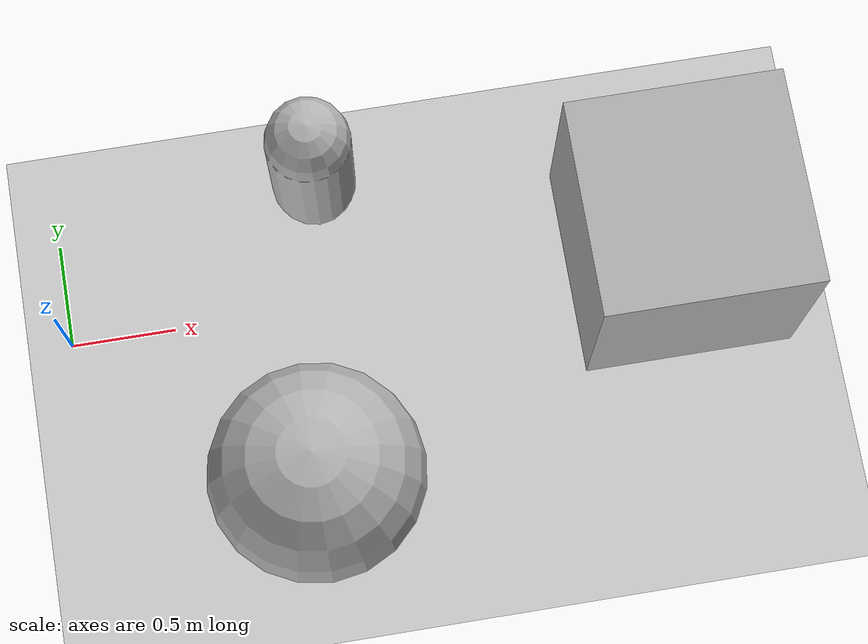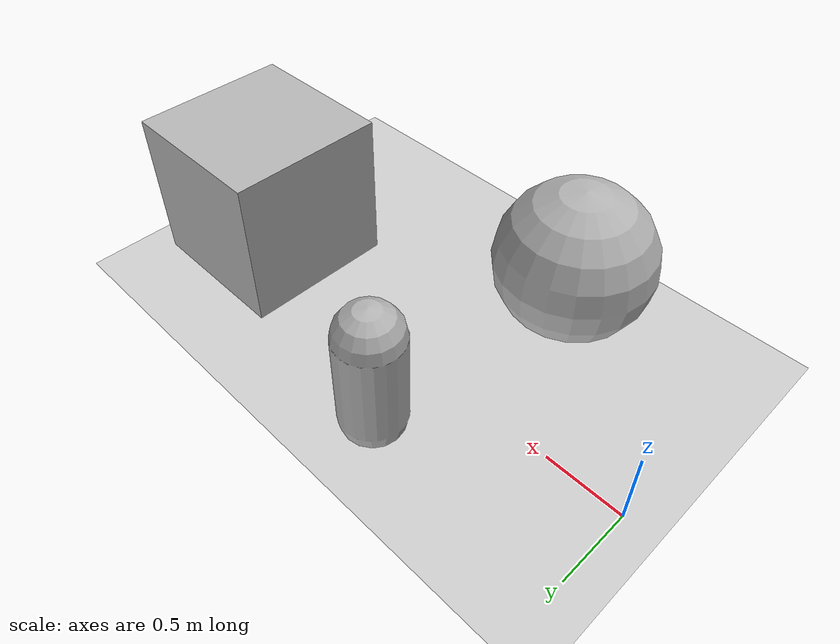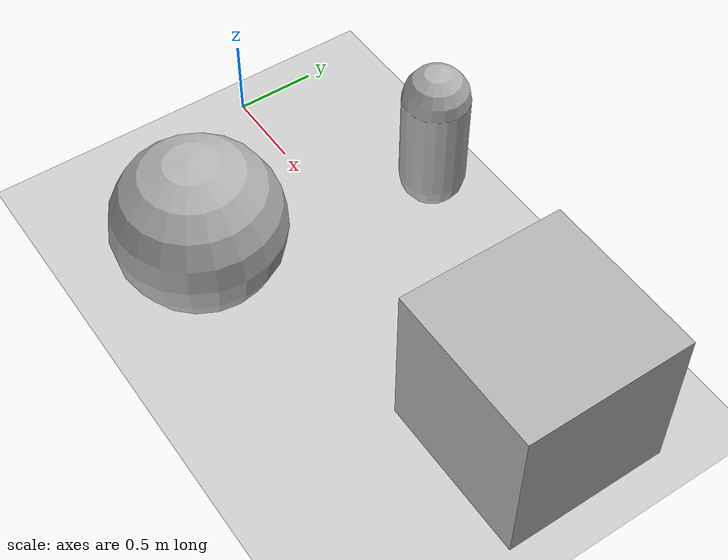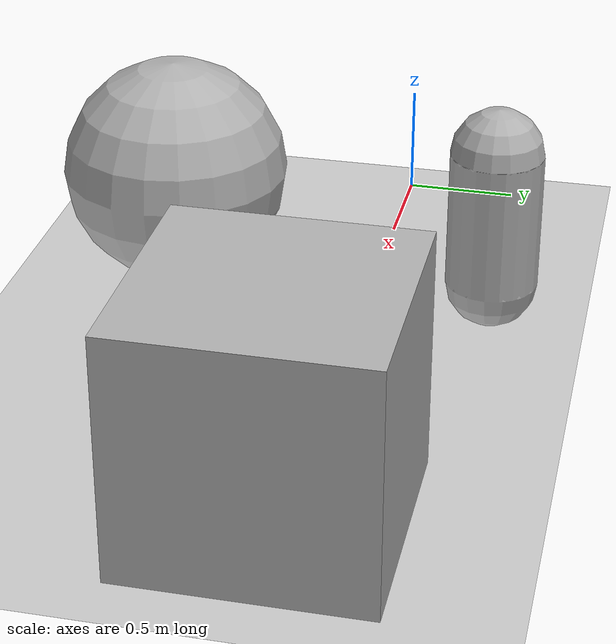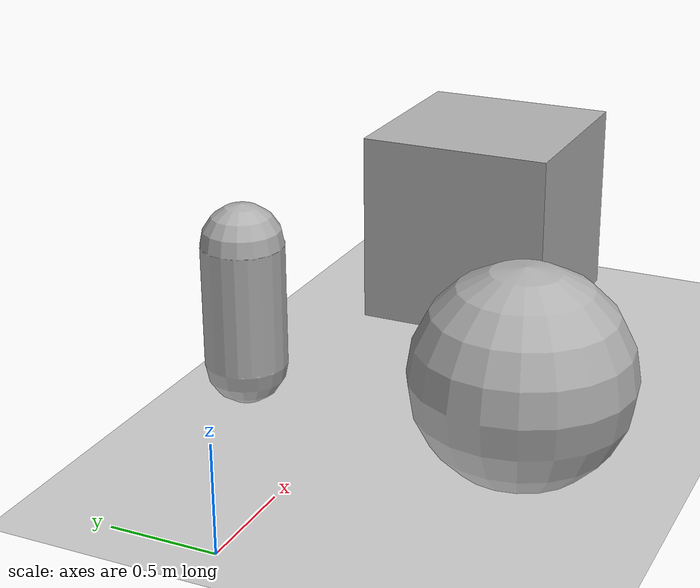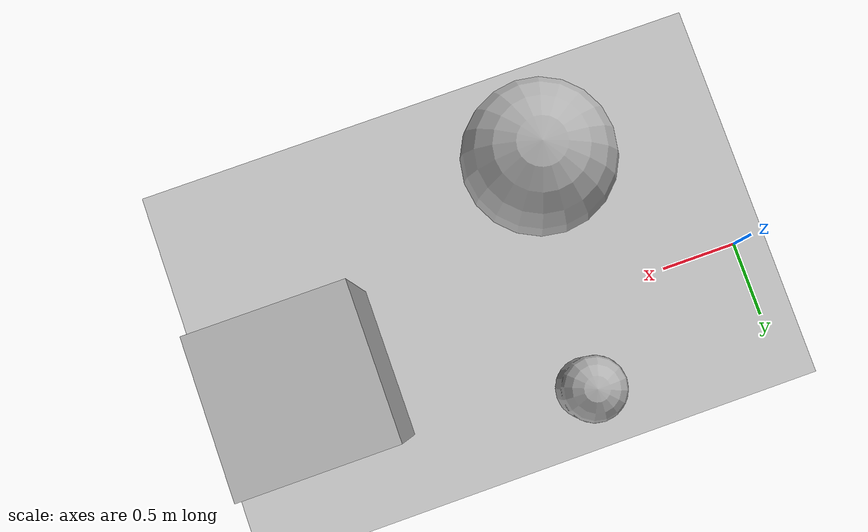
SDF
<sdf version='1.10'>
  <world name='empty'>
    <physics name='1ms' type='ignored'>
      <max_step_size>0.001</max_step_size>
      <real_time_factor>1</real_time_factor>
      <real_time_update_rate>1000</real_time_update_rate>
    </physics>
    <plugin name='gz::sim::systems::Physics' filename='gz-sim-physics-system'/>
    <plugin name='gz::sim::systems::UserCommands' filename='gz-sim-user-commands-system'/>
    <plugin name='gz::sim::systems::SceneBroadcaster' filename='gz-sim-scene-broadcaster-system'/>
    <plugin name='gz::sim::systems::Contact' filename='gz-sim-contact-system'/>
    <gravity>0 0 -9.8000000000000007</gravity>
    <magnetic_field>5.5644999999999998e-06 2.2875799999999999e-05 -4.2388400000000002e-05</magnetic_field>
    <atmosphere type='adiabatic'/>
    <scene>
      <ambient>0.400000006 0.400000006 0.400000006 1</ambient>
      <background>0.699999988 0.699999988 0.699999988 1</background>
      <shadows>true</shadows>
    </scene>
    <model name='ground_plane'>
      <static>true</static>
      <link name='link'>
        <collision name='collision'>
          <geometry>
            <plane>
              <normal>0 0 1</normal>
              <size>100 100</size>
            </plane>
          </geometry>
          <surface>
            <friction>
              <ode/>
            </friction>
            <bounce/>
            <contact/>
          </surface>
        </collision>
        <visual name='visual'>
          <geometry>
            <plane>
              <normal>0 0 1</normal>
              <size>100 100</size>
            </plane>
          </geometry>
          <material>
            <ambient>0.800000012 0.800000012 0.800000012 1</ambient>
            <diffuse>0.800000012 0.800000012 0.800000012 1</diffuse>
            <specular>0.800000012 0.800000012 0.800000012 1</specular>
          </material>
        </visual>
        <pose>0 0 0 0 0 0</pose>
        <inertial>
          <pose>0 0 0 0 0 0</pose>
          <mass>1</mass>
          <inertia>
            <ixx>1</ixx>
            <ixy>0</ixy>
            <ixz>0</ixz>
            <iyy>1</iyy>
            <iyz>0</iyz>
            <izz>1</izz>
          </inertia>
        </inertial>
        <enable_wind>false</enable_wind>
      </link>
      <pose>0 0 0 0 0 0</pose>
      <self_collide>false</self_collide>
    </model>
    <model name='capsule'>
      <pose>1.2710100412368774 0.56016308069229126 0.499999999902001 0 0 0</pose>
      <link name='capsule_link'>
        <inertial>
          <inertia>
            <ixx>0.074153999999999998</ixx>
            <ixy>0</ixy>
            <ixz>0</ixz>
            <iyy>0.074153999999999998</iyy>
            <iyz>0</iyz>
            <izz>0.018769000000000001</izz>
          </inertia>
          <mass>1</mass>
          <pose>0 0 0 0 0 0</pose>
        </inertial>
        <collision name='capsule_collision'>
          <geometry>
            <capsule>
              <radius>0.20000000000000001</radius>
              <length>0.59999999999999998</length>
            </capsule>
          </geometry>
          <surface>
            <friction>
              <ode/>
            </friction>
            <bounce/>
            <contact/>
          </surface>
        </collision>
        <visual name='capsule_visual'>
          <geometry>
            <capsule>
              <radius>0.20000000000000001</radius>
              <length>0.59999999999999998</length>
            </capsule>
          </geometry>
          <material>
            <ambient>0.300000012 0.300000012 0.300000012 1</ambient>
            <diffuse>0.699999988 0.699999988 0.699999988 1</diffuse>
            <specular>1 1 1 1</specular>
          </material>
        </visual>
        <pose>0 0 0 0 0 0</pose>
        <enable_wind>false</enable_wind>
      </link>
      <static>false</static>
      <self_collide>false</self_collide>
    </model>
    <model name='sphere'>
      <pose>1.0782400369644165 -0.90087735652923584 0.499999999902001 0 0 0</pose>
      <link name='sphere_link'>
        <inertial>
          <inertia>
            <ixx>0.10000000000000001</ixx>
            <ixy>0</ixy>
            <ixz>0</ixz>
            <iyy>0.10000000000000001</iyy>
            <iyz>0</iyz>
            <izz>0.10000000000000001</izz>
          </inertia>
          <mass>1</mass>
          <pose>0 0 0 0 0 0</pose>
        </inertial>
        <collision name='sphere_collision'>
          <geometry>
            <sphere>
              <radius>0.5</radius>
            </sphere>
          </geometry>
          <surface>
            <friction>
              <ode/>
            </friction>
            <bounce/>
            <contact/>
          </surface>
        </collision>
        <visual name='sphere_visual'>
          <geometry>
            <sphere>
              <radius>0.5</radius>
            </sphere>
          </geometry>
          <material>
            <ambient>0.300000012 0.300000012 0.300000012 1</ambient>
            <diffuse>0.699999988 0.699999988 0.699999988 1</diffuse>
            <specular>1 1 1 1</specular>
          </material>
        </visual>
        <pose>0 0 0 0 0 0</pose>
        <enable_wind>false</enable_wind>
      </link>
      <static>false</static>
      <self_collide>false</self_collide>
    </model>
    <model name='box'>
      <pose>2.921070996609064 -0.020994644924697235 0.49999999990199806 6.2287739151293738e-22 9.3279666454713669e-22 -3.6315533669320137e-22</pose>
      <link name='box_link'>
        <inertial>
          <inertia>
            <ixx>0.16666</ixx>
            <ixy>0</ixy>
            <ixz>0</ixz>
            <iyy>0.16666</iyy>
            <iyz>0</iyz>
            <izz>0.16666</izz>
          </inertia>
          <mass>1</mass>
          <pose>0 0 0 0 0 0</pose>
        </inertial>
        <collision name='box_collision'>
          <geometry>
            <box>
              <size>1 1 1</size>
            </box>
          </geometry>
          <surface>
            <friction>
              <ode/>
            </friction>
            <bounce/>
            <contact/>
          </surface>
        </collision>
        <visual name='box_visual'>
          <geometry>
            <box>
              <size>1 1 1</size>
            </box>
          </geometry>
          <material>
            <ambient>0.300000012 0.300000012 0.300000012 1</ambient>
            <diffuse>0.699999988 0.699999988 0.699999988 1</diffuse>
            <specular>1 1 1 1</specular>
          </material>
        </visual>
        <pose>0 0 0 0 0 0</pose>
        <enable_wind>false</enable_wind>
      </link>
      <static>false</static>
      <self_collide>false</self_collide>
    </model>
    <light name='sun' type='directional'>
      <pose>0 0 10 0 0 0</pose>
      <cast_shadows>true</cast_shadows>
      <intensity>1</intensity>
      <direction>-0.5 0.10000000000000001 -0.90000000000000002</direction>
      <diffuse>0.800000012 0.800000012 0.800000012 1</diffuse>
      <specular>0.200000003 0.200000003 0.200000003 1</specular>
      <attenuation>
        <range>1000</range>
        <linear>0.01</linear>
        <constant>0.90000000000000002</constant>
        <quadratic>0.001</quadratic>
      </attenuation>
      <spot>
        <inner_angle>0</inner_angle>
        <outer_angle>0</outer_angle>
        <falloff>0</falloff>
      </spot>
    </light>
  </world>
</sdf>
